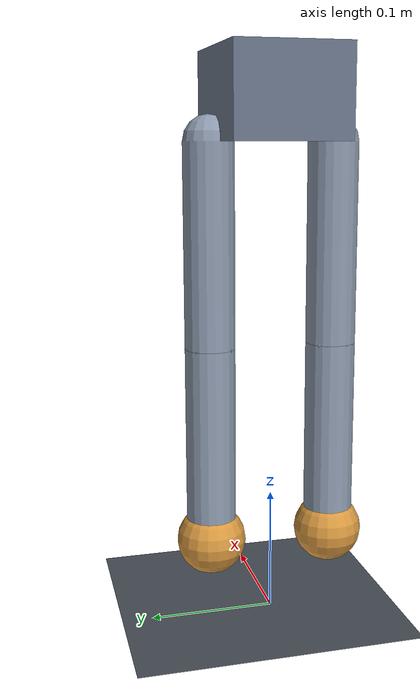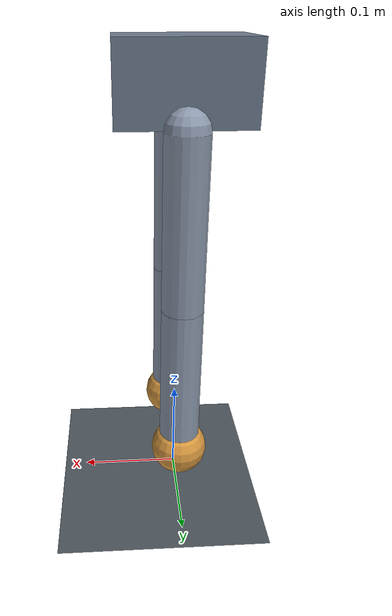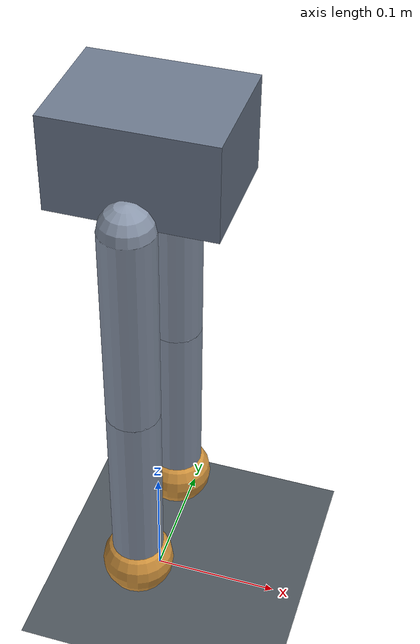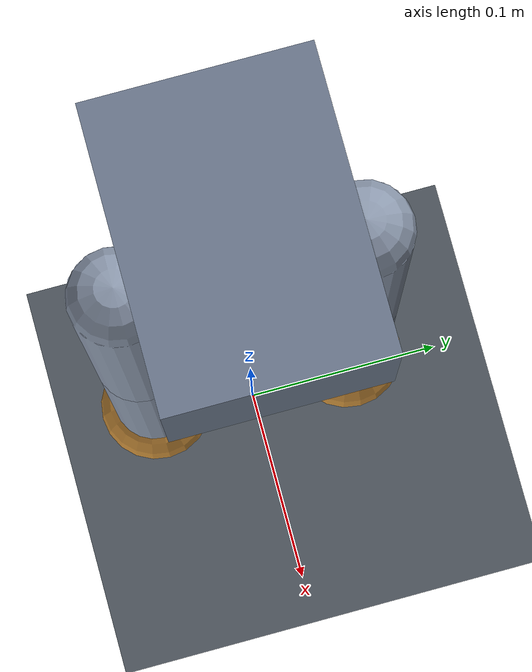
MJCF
<mujoco model="smoke_biped">
  <compiler angle="radian" autolimits="true"/>
  <option timestep="0.002" integrator="implicitfast"/>

  <default>
    <default class="robot">
      <joint damping="0.05" armature="0.01"/>
      <default class="motor">
        <position kp="60" kv="2.0" forcerange="-20 20"/>
      </default>
      <default class="link">
        <geom type="capsule" size="0.02" density="800" rgba="0.55 0.6 0.68 1"/>
      </default>
      <default class="foot">
        <geom type="sphere" size="0.028" density="800" rgba="0.85 0.6 0.25 1"
              friction="1.0 0.01 0.01" priority="1" condim="3"/>
      </default>
    </default>
  </default>

  <worldbody>
    <light pos="0 0 2.5" dir="0 0 -1" directional="true"/>
    <geom name="floor" type="plane" size="0 0 0.05" rgba="0.3 0.33 0.36 1"
          friction="1.0 0.01 0.01" condim="3"/>

    <body name="base" pos="0 0 0.42" childclass="robot">
      <freejoint name="root"/>
      <inertial pos="0 0 0" mass="2.0" diaginertia="0.012 0.016 0.010"/>
      <geom name="torso" type="box" size="0.06 0.045 0.035" rgba="0.42 0.47 0.55 1"/>
      <site name="imu" pos="0 0 0" size="0.008"/>

      <body name="L_thigh" pos="0 0.05 -0.035">
        <joint name="L_hip" axis="0 1 0" range="-1.4 1.4"/>
        <geom class="link" fromto="0 0 0  0 0 -0.16"/>
        <body name="L_calf" pos="0 0 -0.16">
          <joint name="L_knee" axis="0 1 0" range="-2.2 0"/>
          <geom class="link" fromto="0 0 0  0 0 -0.16"/>
          <body name="L_foot" pos="0 0 -0.16">
            <geom name="L_foot_geom" class="foot"/>
            <site name="L_foot_site" size="0.008"/>
          </body>
        </body>
      </body>

      <body name="R_thigh" pos="0 -0.05 -0.035">
        <joint name="R_hip" axis="0 1 0" range="-1.4 1.4"/>
        <geom class="link" fromto="0 0 0  0 0 -0.16"/>
        <body name="R_calf" pos="0 0 -0.16">
          <joint name="R_knee" axis="0 1 0" range="-2.2 0"/>
          <geom class="link" fromto="0 0 0  0 0 -0.16"/>
          <body name="R_foot" pos="0 0 -0.16">
            <geom name="R_foot_geom" class="foot"/>
            <site name="R_foot_site" size="0.008"/>
          </body>
        </body>
      </body>
    </body>
  </worldbody>

  <actuator>
    <position class="motor" name="L_hip_ctrl"  joint="L_hip"  ctrlrange="-1.4 1.4"/>
    <position class="motor" name="L_knee_ctrl" joint="L_knee" ctrlrange="-2.2 0"/>
    <position class="motor" name="R_hip_ctrl"  joint="R_hip"  ctrlrange="-1.4 1.4"/>
    <position class="motor" name="R_knee_ctrl" joint="R_knee" ctrlrange="-2.2 0"/>
  </actuator>

  <sensor>
    <framequat      name="base_quat"  objtype="site" objname="imu"/>
    <gyro           name="base_gyro"  site="imu"/>
    <velocimeter    name="base_vel"   site="imu"/>
    <framepos       name="L_foot_pos" objtype="site" objname="L_foot_site"/>
    <framepos       name="R_foot_pos" objtype="site" objname="R_foot_site"/>
  </sensor>

  <keyframe>
    <key name="home"
         qpos="0 0 0.369  1 0 0 0  0.3 -0.6 0.3 -0.6"
         ctrl="0.3 -0.6 0.3 -0.6"/>
  </keyframe>
</mujoco>
